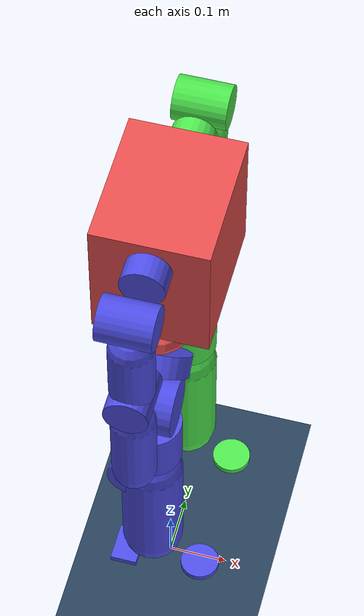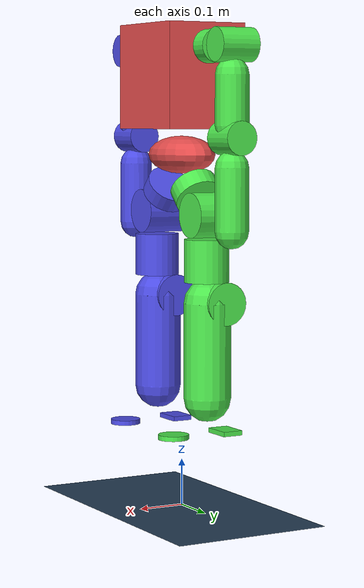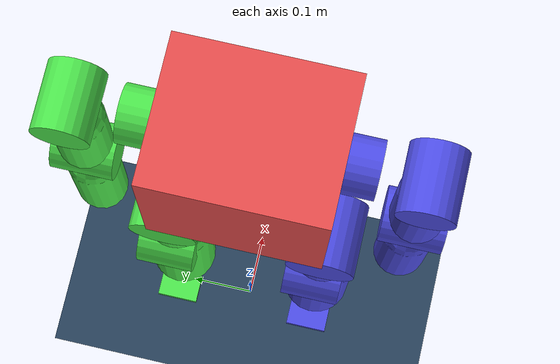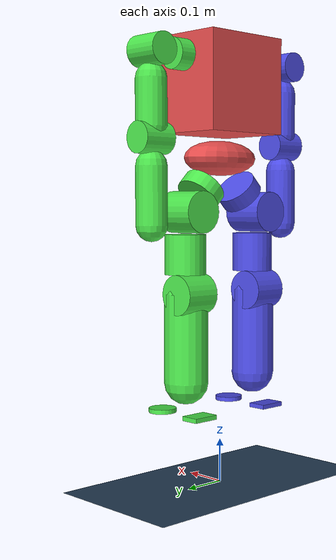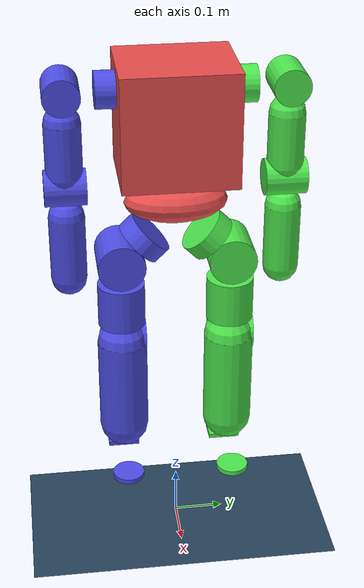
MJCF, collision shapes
<mujoco model="kuavo scene">
  <include file="biped_s11_collision.xml"/>

  <statistic center="0 0 1" extent="1.8"/>

  <visual>
    <headlight diffuse="0.6 0.6 0.6" ambient="0.3 0.3 0.3" specular="0 0 0"/>
    <rgba haze="0.15 0.25 0.35 1"/>
    <global azimuth="160" elevation="-20"/>
  </visual>

  <asset>
    <texture type="skybox" builtin="gradient" rgb1="0.3 0.5 0.7" rgb2="0 0 0" width="512" height="3072"/>
    <texture type="2d" name="groundplane" builtin="checker" mark="edge" rgb1="0.2 0.3 0.4" rgb2="0.1 0.2 0.3"
      markrgb="0.8 0.8 0.8" width="300" height="300"/>
    <material name="groundplane" texture="groundplane" texuniform="true" texrepeat="5 5" reflectance="0.2"/>
  </asset>

  <worldbody>
    <light pos="0 0 3.5" dir="0 0 -1" directional="true"/>
    <geom name="floor" size="0 0 0.05" type="plane" material="groundplane"/>
  </worldbody>

  <keyframe>
    <key name="home"
      qpos="
    0 0 0.98
    1 0 0 0
    0 0 0 0 0 0
    0 0 0 0 0 0
    0 0 0 0
    0 0 0 0
    "/>
  </keyframe>

</mujoco>

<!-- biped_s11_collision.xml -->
<mujoco model="biped_s11">
  <compiler angle="radian" meshdir="../meshes/" />
  <size njmax="500" nconmax="100" />
  <default>
    <joint limited="true" armature="0.05" damping="0.2" frictionloss="0.02"/>
    <motor ctrllimited="true" ctrlrange="-100 100"/>
    <equality solref="0.005 1"/>
    <default class="collision">
      <!-- User parameter for geoms is used to identify collision types -->
      <geom material="collision" contype="4" conaffinity="4" user="2" rgba="0.9 0.3 0.3 0.2"/>
      <default class="collision-left">
        <geom contype="1" conaffinity="2" rgba="0.3 0.9 0.3 0.2"/>
      </default>
      <default class="collision-right">
        <geom contype="2" conaffinity="1" rgba="0.3 0.3 0.9 0.2"/>
      </default>
    </default>
  </default>
  <asset>
    <texture type="skybox" builtin="gradient" rgb1="0.4 0.6 0.8" width="128" height="128"/>
    <texture name="grid" type="2d" builtin="checker" rgb1=".1 .2 .3" rgb2=".2 .3 .4" width="300" height="300"/>
    <material name="grid" texture="grid" texrepeat="8 8" reflectance=".1"/>
    <material name="collision" rgba="0.1 0.5 0.9 0"/>
    <mesh name="torso" file="torso.STL" />
    <mesh name="waist" file="waist.STL" />
    <mesh name="l_leg_pitch" file="l_leg_pitch.STL" />
    <mesh name="l_leg_roll" file="l_leg_roll.STL" />
    <mesh name="l_leg_yaw" file="l_leg_yaw.STL" />
    <mesh name="l_knee" file="l_knee.STL" />
    <mesh name="l_foot_pitch" file="l_foot_pitch.STL" />
    <mesh name="l_foot_roll" file="l_foot_roll.STL" />
    <mesh name="r_leg_pitch" file="r_leg_pitch.STL" />
    <mesh name="r_leg_roll" file="r_leg_roll.STL" />
    <mesh name="r_leg_yaw" file="r_leg_yaw.STL" />
    <mesh name="r_knee" file="r_knee.STL" />
    <mesh name="r_foot_pitch" file="r_foot_pitch.STL" />
    <mesh name="r_foot_roll" file="r_foot_roll.STL" />
    <mesh name="l_arm_pitch" file="l_arm_pitch.STL" />
    <mesh name="l_arm_roll" file="l_arm_roll.STL" />
    <mesh name="l_arm_yaw" file="l_arm_yaw.STL" />
    <mesh name="l_forearm" file="l_forearm.STL" />
    <mesh name="r_arm_pitch" file="r_arm_pitch.STL" />
    <mesh name="r_arm_roll" file="r_arm_roll.STL" />
    <mesh name="r_arm_yaw" file="r_arm_yaw.STL" />
    <mesh name="r_forearm" file="r_forearm.STL" />
  </asset>
  <worldbody>
    <body name="base_link" pos="0 0 0.82">
      <freejoint />
      <site name="imu" pos="0 0 0" />
      <inertial pos="-0.000655862 2.32222e-06 0.0146699" quat="0.999992 1.19011e-05 -0.00408871 -0.000171561" mass="10.0407" diaginertia="0.127902 0.107243 0.0458334"/>
      <geom type="mesh" contype="0" conaffinity="0" group="1" density="0" rgba="1 1 1 1" mesh="torso"/>
      <geom type="mesh" contype="0" conaffinity="0" group="1" density="0" rgba="1 1 1 1" mesh="waist"/>
      <geom type="box" size="0.09 0.11 0.11" pos="0 0 0.1" class="collision"/>
      <geom type="ellipsoid" size="0.06 0.1 0.04" pos="-0.0 0 -0.065" class="collision"/>
      <body name="leg_l1_link" pos="0 0.108536 -0.188536">
        <inertial pos="-0.00619745 -0.026918 0.0258814" quat="0.214487 0.675649 0.287055 0.644277" mass="0.207446" diaginertia="0.000383055 0.000338802 0.000162593" />
        <joint name="leg_l1_joint" pos="0 0 0" axis="0 0.707107 -0.707107" range="-2.0944 1.5708" actuatorfrcrange="-180 180" damping="0.2" />
        <geom type="mesh" contype="0" conaffinity="0" group="1" density="0" rgba="1 1 1 1" mesh="l_leg_pitch" />
        <geom type='cylinder' size='0.05' fromto='0 -0.035 0.035 0 -0.06 0.06' class='collision-left'/>
        <body name="leg_l2_link" pos="0.001 0 0">
          <inertial pos="-0.00098722 0.00077479 -0.00862244" quat="0.996899 0.0464087 -0.0610492 -0.0176426" mass="0.988101" diaginertia="0.00122087 0.00120515 0.000865808" />
          <joint name="leg_l2_joint" pos="0 0 0" axis="1 0 0" range="-1.14668 0.872665" actuatorfrcrange="-100 100" damping="0.2" />
          <geom type="mesh" contype="0" conaffinity="0" group="1" density="0" rgba="1 1 1 1" mesh="l_leg_roll" />
          <geom type='cylinder' size='0.047' fromto='0.04 0 0 -0.06 0 0' class='collision-left'/>
          <body name="leg_l3_link">
            <inertial pos="-0.010366 0.00124714 -0.137727" quat="0.706643 0.102935 0.0679165 0.696741" mass="1.70624" diaginertia="0.00492147 0.00475764 0.00152152" />
            <joint name="leg_l3_joint" pos="0 0 0" axis="0 0 1" range="-0.818385 1.5708" actuatorfrcrange="-100 100" damping="0.2" />
            <geom type="mesh" contype="0" conaffinity="0" group="1" density="0" rgba="1 1 1 1" mesh="l_leg_yaw" />
            <geom type='cylinder' size='0.047' fromto='0 0 -0.05 0 0 -0.14' class='collision-left'/>
            <body name="leg_l4_link" pos="-0.022 0 -0.1835">
              <inertial pos="0.0245549 -0.00415947 -0.100327" quat="0.591944 0.0379387 -0.0174607 0.804896" mass="1.33886" diaginertia="0.00583722 0.00555351 0.000899702" />
              <joint name="leg_l4_joint" pos="0 0 0" axis="0 1 0" range="0 2.61799" actuatorfrcrange="-180 180" damping="0.2" />
              <geom type="mesh" contype="0" conaffinity="0" group="1" density="0" rgba="1 1 1 1" mesh="l_knee" />
              <geom type='cylinder' size='0.045' fromto='0 0.048 0 0 -0.035 0' class='collision-left'/>
              <geom type='capsule' size='0.05' fromto='0.02 0 0.0 0.02 0 -0.2' class='collision-left'/>
              <body name="leg_l5_link" pos="0.021 0 -0.235">
                <inertial pos="0 0 0" quat="0.5 0.5 -0.5 0.5" mass="0.0719352" diaginertia="1.218e-05 6.92e-06 6.92e-06" />
                <joint name="leg_l5_joint" pos="0 0 0" axis="0 1 0" range="-0.872665 0.523599" actuatorfrcrange="-36 36" damping="0.2" />
                <geom type="mesh" contype="0" conaffinity="0" group="1" density="0" rgba="1 1 1 1" mesh="l_foot_pitch" />
                <body name="leg_l6_link">
                  <inertial pos="-0.00745417 0 -0.0257771" quat="0 0.760128 0 0.649773" mass="0.316011" diaginertia="0.000722859 0.000692614 0.000157581" />
                  <joint name="leg_l6_joint" pos="0 0 0" axis="1 0 0" range="-0.261799 0.261799" actuatorfrcrange="-36 36" damping="0.2" />
                  <geom type="mesh" contype="0" conaffinity="0" group="1" density="0" rgba="1 1 1 1" mesh="l_foot_roll" />
                  <geom type="box" size="0.022 0.032 0.005" pos="-0.045 0 -0.04" class="collision-left"/>
                  <geom type="cylinder" size="0.032 0.005 0.005" pos="0.08 0 -0.04" class="collision-left"/>
                </body>
              </body>
            </body>
          </body>
        </body>
      </body>
      <body name="leg_r1_link" pos="0 -0.108536 -0.188536">
        <inertial pos="-0.00619607 0.0269196 0.0258799" quat="-0.214605 0.675638 -0.287111 0.644225" mass="0.207447" diaginertia="0.000383038 0.000338807 0.000162575" />
        <joint name="leg_r1_joint" pos="0 0 0" axis="0 -0.707107 -0.707107" range="-1.5708 2.0944" actuatorfrcrange="-180 180" damping="0.2" />
        <geom type="mesh" contype="0" conaffinity="0" group="1" density="0" rgba="1 1 1 1" mesh="r_leg_pitch" />
        <geom type='cylinder' size='0.05' fromto='0 0.035 0.035 0 0.06 0.06' class='collision-right'/>
        <body name="leg_r2_link" pos="0.001 0 0">
          <inertial pos="-0.00091758 -0.00072548 -0.00869132" quat="0.996298 -0.0462001 -0.0583035 0.0430797" mass="0.988088" diaginertia="0.00121961 0.00119846 0.000863664" />
          <joint name="leg_r2_joint" pos="0 0 0" axis="1 0 0" range="-0.872665 1.14668" actuatorfrcrange="-100 100" damping="0.2" />
          <geom type="mesh" contype="0" conaffinity="0" group="1" density="0" rgba="1 1 1 1" mesh="r_leg_roll" />
          <geom type='cylinder' size='0.047' fromto='0.04 0 0 -0.06 0 0' class='collision-right'/>
          <body name="leg_r3_link">
            <inertial pos="-0.0104026 -0.00122173 -0.13769" quat="0.700467 0.0672003 0.103572 0.702924" mass="1.70623" diaginertia="0.00492356 0.00476259 0.00152095" />
            <joint name="leg_r3_joint" pos="0 0 0" axis="0 0 1" range="-1.5708 0.818385" actuatorfrcrange="-100 100" damping="0.2" />
            <geom type="mesh" contype="0" conaffinity="0" group="1" density="0" rgba="1 1 1 1" mesh="r_leg_yaw" />
            <geom type='cylinder' size='0.047' fromto='0 0 -0.05 0 0 -0.14' class='collision-right'/>
            <body name="leg_r4_link" pos="-0.022 0 -0.1835">
              <inertial pos="0.0245702 0.00415925 -0.100286" quat="0.805271 -0.0176217 0.0378743 0.591434" mass="1.33884" diaginertia="0.00582685 0.00554327 0.00089902" />
              <joint name="leg_r4_joint" pos="0 0 0" axis="0 1 0" range="0 2.61799" actuatorfrcrange="-180 180" damping="0.2" />
              <geom type="mesh" contype="0" conaffinity="0" group="1" density="0" rgba="1 1 1 1" mesh="r_knee" />
              <geom type='cylinder' size='0.045' fromto='0 0.048 0 0 -0.035 0' class='collision-right'/>
              <geom type='capsule' size='0.05' fromto='0.02 0 0.0 0.02 0 -0.2' class='collision-right'/>
              <body name="leg_r5_link" pos="0.021 0 -0.235">
                <inertial pos="0 0 0" quat="0.5 0.5 -0.5 0.5" mass="0.0719352" diaginertia="1.218e-05 6.92e-06 6.92e-06" />
                <joint name="leg_r5_joint" pos="0 0 0" axis="0 1 0" range="-0.872665 0.523599" actuatorfrcrange="-36 36" damping="0.2" />
                <geom type="mesh" contype="0" conaffinity="0" group="1" density="0" rgba="1 1 1 1" mesh="r_foot_pitch" />
                <body name="leg_r6_link">
                  <inertial pos="-0.00745417 0 -0.0257771" quat="0 0.760128 0 0.649773" mass="0.316011" diaginertia="0.000722859 0.000692614 0.000157581" />
                  <joint name="leg_r6_joint" pos="0 0 0" axis="1 0 0" range="-0.261799 0.261799" actuatorfrcrange="-36 36" damping="0.2" />
                  <geom type="mesh" contype="0" conaffinity="0" group="1" density="0" rgba="1 1 1 1" mesh="r_foot_roll" />
                  <geom type="mesh" contype="0" conaffinity="0" group="1" density="0" rgba="1 1 1 1" mesh="r_foot_roll" />
                  <geom type="box" size="0.022 0.032 0.005" pos="-0.045 0 -0.04" class="collision-right"/>
                  <geom type="cylinder" size="0.032 0.005 0.005" pos="0.08 0 -0.04" class="collision-right"/>
                </body>
              </body>
            </body>
          </body>
        </body>
      </body>
      <body name="zarm_l1_link" pos="0 0.2085 0.16">
        <inertial pos="0.0039 -0.00971 3e-05" quat="0.545231 0.450248 -0.545231 0.450248" mass="0.2" diaginertia="0.00015 0.000141926 8.80742e-05" />
        <joint name="zarm_l1_joint" pos="0 0 0" axis="0 1 0" range="-3.14159 2.0944" actuatorfrcrange="-12 12" damping="0.2" />
        <geom type="mesh" contype="0" conaffinity="0" group="1" density="0" rgba="1 1 1 1" mesh="l_arm_pitch" />
        <geom type='cylinder' size='0.035' fromto='0 -0.06 0 0 -0.1 0' class='collision-left'/>
        <body name="zarm_l2_link">
          <inertial pos="0.00166 0 -0.03622" quat="0.576846 0.40896 0.40896 0.576846" mass="0.16" diaginertia="0.00022 0.000177016 0.000112984" />
          <joint name="zarm_l2_joint" pos="0 0 0" axis="1 0 0" range="-0.349066 3.49066" actuatorfrcrange="-12 12" damping="0.2" />
          <geom type="mesh" contype="0" conaffinity="0" group="1" density="0" rgba="1 1 1 1" mesh="l_arm_roll" />
          <geom type='cylinder' size='0.035' fromto='0.04 0 0 -0.045 0 0' class='collision-left'/>
          <body name="zarm_l3_link">
            <inertial pos="0.00056 0.00162 -0.13553" quat="0.584558 0.0185362 -0.0133602 0.81103" mass="0.688" diaginertia="0.00173289 0.00173 0.000347108" />
            <joint name="zarm_l3_joint" pos="0 0 0" axis="0 0 1" range="-1.5708 1.5708" actuatorfrcrange="-12 12" damping="0.2" />
            <geom type="mesh" contype="0" conaffinity="0" group="1" density="0" rgba="1 1 1 1" mesh="l_arm_yaw" />
            <geom type='capsule' size='0.035' fromto='0 0 -0.06 0 0 -0.1636' class='collision-left'/>
            <body name="zarm_l4_link" pos="0 0 -0.188">
              <inertial pos="-0.000119642 0.000368896 -0.126769" quat="0.999986 -0.00531722 -1.39859e-06 7.43671e-09" mass="0.175524" diaginertia="0.00105099 0.00102109 7.98989e-05" />
              <joint name="zarm_l4_joint" pos="0 0 0" axis="0 1 0" range="-2.26893 0" actuatorfrcrange="-12 12" damping="0.2" />
              <geom type="mesh" contype="0" conaffinity="0" group="1" density="0" rgba="1 1 1 1" mesh="l_forearm" />
              <geom size="0.005" pos="0 0 -0.17" />
              <geom type='cylinder' size='0.035' fromto='0 0.04 0 0 -0.04 0' class='collision-left'/>
              <geom type='capsule' size='0.035' fromto='0 0 -0.06 0 0 -0.19' class='collision-left'/>
            </body>
          </body>
        </body>
      </body>
      <body name="zarm_r1_link" pos="0 -0.2085 0.16">
        <inertial pos="0.0039 0.00971 3e-05" quat="0.450248 0.545231 -0.450248 0.545231" mass="0.2" diaginertia="0.00015 0.000141926 8.80742e-05" />
        <joint name="zarm_r1_joint" pos="0 0 0" axis="0 1 0" range="-3.14159 2.0944" actuatorfrcrange="-12 12" damping="0.2" />
        <geom type="mesh" contype="0" conaffinity="0" group="1" density="0" rgba="1 1 1 1" mesh="r_arm_pitch" />
        <geom type='cylinder' size='0.035' fromto='0 0.06 0 0 0.1 0' class='collision-right'/>
        <body name="zarm_r2_link">
          <inertial pos="0.00166 0 -0.03622" quat="0.576846 0.40896 0.40896 0.576846" mass="0.16" diaginertia="0.00022 0.000177016 0.000112984" />
          <joint name="zarm_r2_joint" pos="0 0 0" axis="1 0 0" range="-3.49066 0.349066" actuatorfrcrange="-12 12" damping="0.2" />
          <geom type="mesh" contype="0" conaffinity="0" group="1" density="0" rgba="1 1 1 1" mesh="r_arm_roll" />
          <geom type='cylinder' size='0.035' fromto='0.04 0 0 -0.045 0 0' class='collision-right'/>
          <body name="zarm_r3_link">
            <inertial pos="0.00056 -0.00162 -0.13553" quat="0.811036 -0.0131704 0.0182729 0.584562" mass="0.688" diaginertia="0.00175285 0.00175 0.000347149" />
            <joint name="zarm_r3_joint" pos="0 0 0" axis="0 0 1" range="-1.5708 1.5708" actuatorfrcrange="-12 12" damping="0.2" />
            <geom type="mesh" contype="0" conaffinity="0" group="1" density="0" rgba="1 1 1 1" mesh="r_arm_yaw" />
            <geom type='capsule' size='0.035' fromto='0 0 -0.06 0 0 -0.1636' class='collision-right'/>
            <body name="zarm_r4_link" pos="0 0 -0.188">
              <inertial pos="-0.000119642 -0.000368896 -0.126769" quat="0.999986 0.00531722 -1.39859e-06 -7.43671e-09" mass="0.175524" diaginertia="0.00105099 0.00102109 7.98989e-05" />
              <joint name="zarm_r4_joint" pos="0 0 0" axis="0 1 0" range="-2.26893 0" actuatorfrcrange="-12 12" damping="0.2" />
              <geom type="mesh" contype="0" conaffinity="0" group="1" density="0" rgba="1 1 1 1" mesh="r_forearm" />
              <geom size="0.005" pos="0 0 -0.17" />
              <geom type='cylinder' size='0.035' fromto='0 0.04 0 0 -0.04 0' class='collision-right'/>
              <geom type='capsule' size='0.035' fromto='0 0 -0.06 0 0 -0.19' class='collision-right'/>

            </body>
          </body>
        </body>
      </body>
    </body>
  </worldbody>
  <actuator>
    <motor gear="1" joint="leg_l1_joint" name="leg_l1_joint_motor" ctrllimited="true" ctrlrange="-180 180" />
    <motor gear="1" joint="leg_l2_joint" name="leg_l2_joint_motor" ctrllimited="true" ctrlrange="-100 100" />
    <motor gear="1" joint="leg_l3_joint" name="leg_l3_joint_motor" ctrllimited="true" ctrlrange="-100 100" />
    <motor gear="1" joint="leg_l4_joint" name="leg_l4_joint_motor" ctrllimited="true" ctrlrange="-180 180" />
    <motor gear="1" joint="leg_l5_joint" name="leg_l5_joint_motor" ctrllimited="true" ctrlrange="-36 36" />
    <motor gear="1" joint="leg_l6_joint" name="leg_l6_joint_motor" ctrllimited="true" ctrlrange="-36 36" />
    <motor gear="1" joint="leg_r1_joint" name="leg_r1_joint_motor" ctrllimited="true" ctrlrange="-180 180" />
    <motor gear="1" joint="leg_r2_joint" name="leg_r2_joint_motor" ctrllimited="true" ctrlrange="-100 100" />
    <motor gear="1" joint="leg_r3_joint" name="leg_r3_joint_motor" ctrllimited="true" ctrlrange="-100 100" />
    <motor gear="1" joint="leg_r4_joint" name="leg_r4_joint_motor" ctrllimited="true" ctrlrange="-180 180" />
    <motor gear="1" joint="leg_r5_joint" name="leg_r5_joint_motor" ctrllimited="true" ctrlrange="-36 36" />
    <motor gear="1" joint="leg_r6_joint" name="leg_r6_joint_motor" ctrllimited="true" ctrlrange="-36 36" />
    <motor gear="1" joint="zarm_l1_joint" name="zarm_l1_joint_motor" ctrllimited="true" ctrlrange="-12 12" />
    <motor gear="1" joint="zarm_l2_joint" name="zarm_l2_joint_motor" ctrllimited="true" ctrlrange="-12 12" />
    <motor gear="1" joint="zarm_l3_joint" name="zarm_l3_joint_motor" ctrllimited="true" ctrlrange="-12 12" />
    <motor gear="1" joint="zarm_l4_joint" name="zarm_l4_joint_motor" ctrllimited="true" ctrlrange="-12 12" />
    <motor gear="1" joint="zarm_r1_joint" name="zarm_r1_joint_motor" ctrllimited="true" ctrlrange="-12 12" />
    <motor gear="1" joint="zarm_r2_joint" name="zarm_r2_joint_motor" ctrllimited="true" ctrlrange="-12 12" />
    <motor gear="1" joint="zarm_r3_joint" name="zarm_r3_joint_motor" ctrllimited="true" ctrlrange="-12 12" />
    <motor gear="1" joint="zarm_r4_joint" name="zarm_r4_joint_motor" ctrllimited="true" ctrlrange="-12 12" />
  </actuator>
  <sensor>
    <accelerometer name="BodyAcc" site="imu" />
    <velocimeter name="BodyVel" site="imu" />
    <gyro name="BodyGyro" site="imu" />
    <framepos name="BodyPos" objtype="site" objname="imu" />
    <framequat name="BodyQuat" objtype="site" objname="imu" />
    <jointpos name="leg_l1_joint_pos" joint="leg_l1_joint" />
    <jointpos name="leg_l2_joint_pos" joint="leg_l2_joint" />
    <jointpos name="leg_l3_joint_pos" joint="leg_l3_joint" />
    <jointpos name="leg_l4_joint_pos" joint="leg_l4_joint" />
    <jointpos name="leg_l5_joint_pos" joint="leg_l5_joint" />
    <jointpos name="leg_l6_joint_pos" joint="leg_l6_joint" />
    <jointpos name="leg_r1_joint_pos" joint="leg_r1_joint" />
    <jointpos name="leg_r2_joint_pos" joint="leg_r2_joint" />
    <jointpos name="leg_r3_joint_pos" joint="leg_r3_joint" />
    <jointpos name="leg_r4_joint_pos" joint="leg_r4_joint" />
    <jointpos name="leg_r5_joint_pos" joint="leg_r5_joint" />
    <jointpos name="leg_r6_joint_pos" joint="leg_r6_joint" />
    <jointpos name="zarm_l1_joint_pos" joint="zarm_l1_joint" />
    <jointpos name="zarm_l2_joint_pos" joint="zarm_l2_joint" />
    <jointpos name="zarm_l3_joint_pos" joint="zarm_l3_joint" />
    <jointpos name="zarm_l4_joint_pos" joint="zarm_l4_joint" />
    <jointpos name="zarm_r1_joint_pos" joint="zarm_r1_joint" />
    <jointpos name="zarm_r2_joint_pos" joint="zarm_r2_joint" />
    <jointpos name="zarm_r3_joint_pos" joint="zarm_r3_joint" />
    <jointpos name="zarm_r4_joint_pos" joint="zarm_r4_joint" />
    <jointvel name="leg_l1_joint_vel" joint="leg_l1_joint" />
    <jointvel name="leg_l2_joint_vel" joint="leg_l2_joint" />
    <jointvel name="leg_l3_joint_vel" joint="leg_l3_joint" />
    <jointvel name="leg_l4_joint_vel" joint="leg_l4_joint" />
    <jointvel name="leg_l5_joint_vel" joint="leg_l5_joint" />
    <jointvel name="leg_l6_joint_vel" joint="leg_l6_joint" />
    <jointvel name="leg_r1_joint_vel" joint="leg_r1_joint" />
    <jointvel name="leg_r2_joint_vel" joint="leg_r2_joint" />
    <jointvel name="leg_r3_joint_vel" joint="leg_r3_joint" />
    <jointvel name="leg_r4_joint_vel" joint="leg_r4_joint" />
    <jointvel name="leg_r5_joint_vel" joint="leg_r5_joint" />
    <jointvel name="leg_r6_joint_vel" joint="leg_r6_joint" />
    <jointvel name="zarm_l1_joint_vel" joint="zarm_l1_joint" />
    <jointvel name="zarm_l2_joint_vel" joint="zarm_l2_joint" />
    <jointvel name="zarm_l3_joint_vel" joint="zarm_l3_joint" />
    <jointvel name="zarm_l4_joint_vel" joint="zarm_l4_joint" />
    <jointvel name="zarm_r1_joint_vel" joint="zarm_r1_joint" />
    <jointvel name="zarm_r2_joint_vel" joint="zarm_r2_joint" />
    <jointvel name="zarm_r3_joint_vel" joint="zarm_r3_joint" />
    <jointvel name="zarm_r4_joint_vel" joint="zarm_r4_joint" />
  </sensor>
</mujoco>
